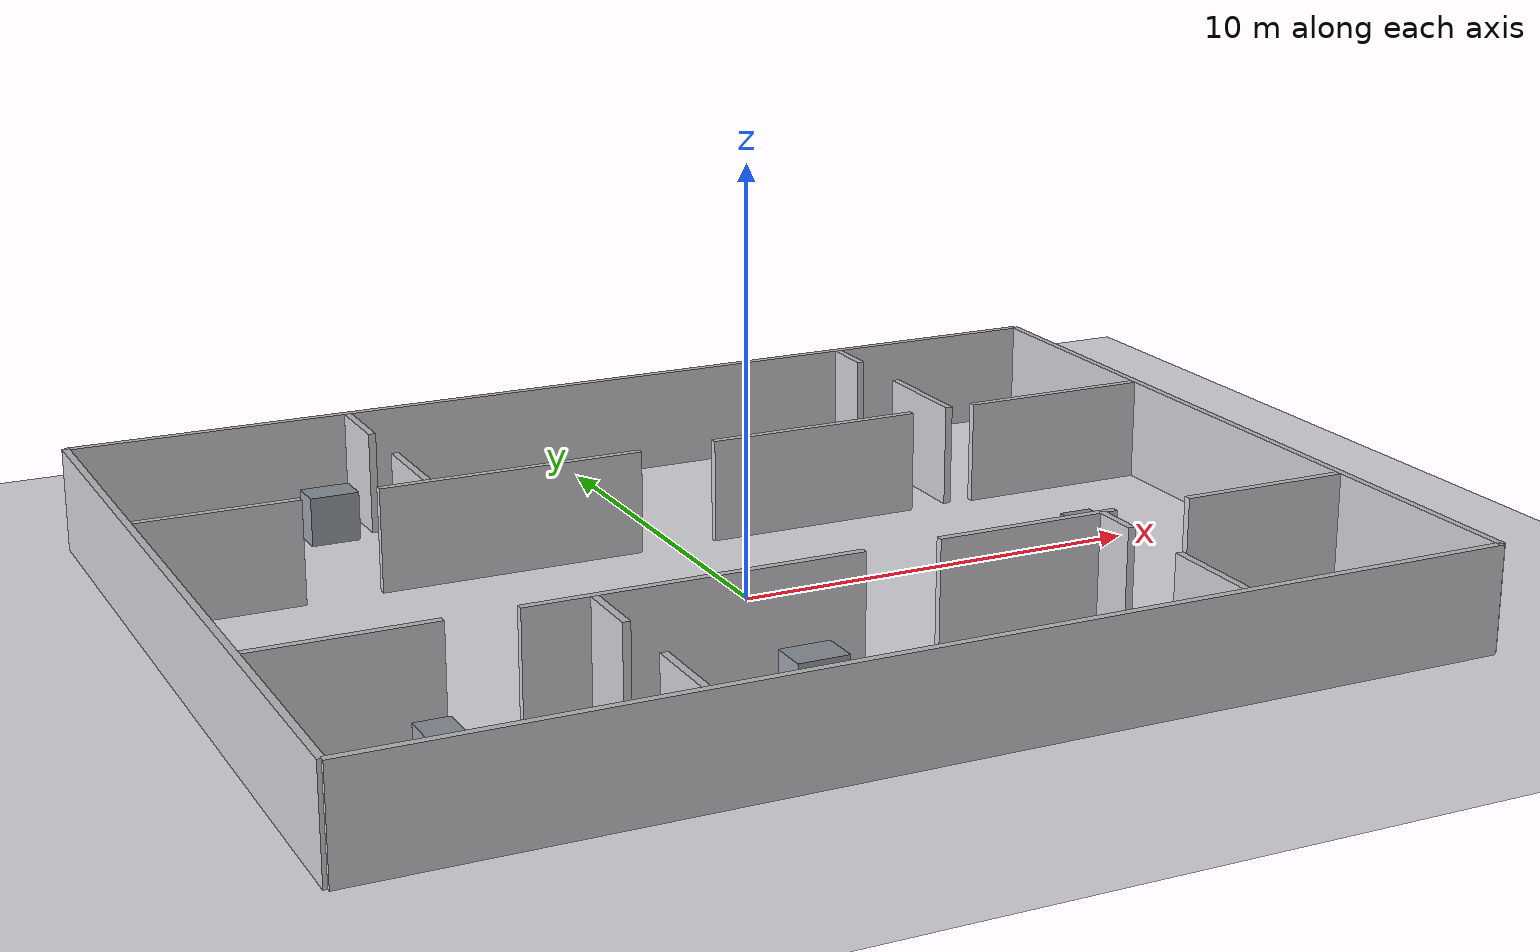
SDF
<?xml version="1.0"?>
<sdf version="1.9"><world name="new_room_world">
<plugin filename="gz-sim-physics-system" name="gz::sim::systems::Physics"/><plugin filename="gz-sim-user-commands-system" name="gz::sim::systems::UserCommands"/><plugin filename="gz-sim-scene-broadcaster-system" name="gz::sim::systems::SceneBroadcaster"/><plugin filename="gz-sim-sensors-system" name="gz::sim::systems::Sensors"><render_engine>ogre2</render_engine></plugin><plugin filename="gz-sim-imu-system" name="gz::sim::systems::Imu"/>
<physics name="new_room_realtime" type="ignored"><max_step_size>0.001</max_step_size><real_time_factor>1</real_time_factor></physics><gravity>0 0 -9.8</gravity><scene><ambient>0.85 0.85 0.87 1</ambient><background>0.68 0.68 0.71 1</background><shadows>false</shadows></scene><light name="sun" type="directional"><cast_shadows>false</cast_shadows><pose>0 0 10 0 0 0</pose><diffuse>0.95 0.95 0.95 1</diffuse><direction>-0.3 0.2 -1</direction></light>
<model name="new_room_ground"><static>true</static><link name="ground_link"><collision name="ground_collision"><geometry><plane><normal>0 0 1</normal><size>40 32</size></plane></geometry></collision><visual name="ground_visual"><geometry><plane><normal>0 0 1</normal><size>40 32</size></plane></geometry><material><ambient>0.92 0.92 0.94 1</ambient><diffuse>0.92 0.92 0.94 1</diffuse></material></visual></link></model>
<model name="mini_hospital_structure"><static>true</static><link name="structure">
<collision name="mx048_c000"><pose>0 10 1.25 0 0 0</pose><geometry><box><size>26 0.18 2.5</size></box></geometry></collision><visual name="mx048_v000"><pose>0 10 1.25 0 0 0</pose><geometry><box><size>26 0.18 2.5</size></box></geometry><material><ambient>0.78 0.78 0.80 1</ambient><diffuse>0.78 0.78 0.80 1</diffuse></material></visual>
<collision name="mx048_c001"><pose>0 -10 1.25 0 0 0</pose><geometry><box><size>26 0.18 2.5</size></box></geometry></collision><visual name="mx048_v001"><pose>0 -10 1.25 0 0 0</pose><geometry><box><size>26 0.18 2.5</size></box></geometry><material><ambient>0.78 0.78 0.80 1</ambient><diffuse>0.78 0.78 0.80 1</diffuse></material></visual>
<collision name="mx048_c002"><pose>-13 0 1.25 0 0 0</pose><geometry><box><size>0.18 20 2.5</size></box></geometry></collision><visual name="mx048_v002"><pose>-13 0 1.25 0 0 0</pose><geometry><box><size>0.18 20 2.5</size></box></geometry><material><ambient>0.78 0.78 0.80 1</ambient><diffuse>0.78 0.78 0.80 1</diffuse></material></visual>
<collision name="mx048_c003"><pose>13 0 1.25 0 0 0</pose><geometry><box><size>0.18 20 2.5</size></box></geometry></collision><visual name="mx048_v003"><pose>13 0 1.25 0 0 0</pose><geometry><box><size>0.18 20 2.5</size></box></geometry><material><ambient>0.78 0.78 0.80 1</ambient><diffuse>0.78 0.78 0.80 1</diffuse></material></visual>
<collision name="mx048_c004"><pose>-11.005 4 1.25 0 0 0</pose><geometry><box><size>3.81 0.18 2.5</size></box></geometry></collision><visual name="mx048_v004"><pose>-11.005 4 1.25 0 0 0</pose><geometry><box><size>3.81 0.18 2.5</size></box></geometry><material><ambient>0.78 0.78 0.80 1</ambient><diffuse>0.78 0.78 0.80 1</diffuse></material></visual>
<collision name="mx048_c005"><pose>-4.075 4 1.25 0 0 0</pose><geometry><box><size>6.45 0.18 2.5</size></box></geometry></collision><visual name="mx048_v005"><pose>-4.075 4 1.25 0 0 0</pose><geometry><box><size>6.45 0.18 2.5</size></box></geometry><material><ambient>0.78 0.78 0.80 1</ambient><diffuse>0.78 0.78 0.80 1</diffuse></material></visual>
<collision name="mx048_c006"><pose>3.75 4 1.25 0 0 0</pose><geometry><box><size>5.4 0.18 2.5</size></box></geometry></collision><visual name="mx048_v006"><pose>3.75 4 1.25 0 0 0</pose><geometry><box><size>5.4 0.18 2.5</size></box></geometry><material><ambient>0.78 0.78 0.80 1</ambient><diffuse>0.78 0.78 0.80 1</diffuse></material></visual>
<collision name="mx048_c007"><pose>10.53 4 1.25 0 0 0</pose><geometry><box><size>4.76 0.18 2.5</size></box></geometry></collision><visual name="mx048_v007"><pose>10.53 4 1.25 0 0 0</pose><geometry><box><size>4.76 0.18 2.5</size></box></geometry><material><ambient>0.78 0.78 0.80 1</ambient><diffuse>0.78 0.78 0.80 1</diffuse></material></visual>
<collision name="mx048_c008"><pose>-10.855 -4.5 1.25 0 0 0</pose><geometry><box><size>4.11 0.18 2.5</size></box></geometry></collision><visual name="mx048_v008"><pose>-10.855 -4.5 1.25 0 0 0</pose><geometry><box><size>4.11 0.18 2.5</size></box></geometry><material><ambient>0.78 0.78 0.80 1</ambient><diffuse>0.78 0.78 0.80 1</diffuse></material></visual>
<collision name="mx048_c009"><pose>-3.3 -4.5 1.25 0 0 0</pose><geometry><box><size>7.8 0.18 2.5</size></box></geometry></collision><visual name="mx048_v009"><pose>-3.3 -4.5 1.25 0 0 0</pose><geometry><box><size>7.8 0.18 2.5</size></box></geometry><material><ambient>0.78 0.78 0.80 1</ambient><diffuse>0.78 0.78 0.80 1</diffuse></material></visual>
<collision name="mx048_c010"><pose>4.625 -4.5 1.25 0 0 0</pose><geometry><box><size>4.45 0.18 2.5</size></box></geometry></collision><visual name="mx048_v010"><pose>4.625 -4.5 1.25 0 0 0</pose><geometry><box><size>4.45 0.18 2.5</size></box></geometry><material><ambient>0.78 0.78 0.80 1</ambient><diffuse>0.78 0.78 0.80 1</diffuse></material></visual>
<collision name="mx048_c011"><pose>10.83 -4.5 1.25 0 0 0</pose><geometry><box><size>4.16 0.18 2.5</size></box></geometry></collision><visual name="mx048_v011"><pose>10.83 -4.5 1.25 0 0 0</pose><geometry><box><size>4.16 0.18 2.5</size></box></geometry><material><ambient>0.78 0.78 0.80 1</ambient><diffuse>0.78 0.78 0.80 1</diffuse></material></visual>
<collision name="mx048_c012"><pose>-6.1 5.175 1.25 0 0 0</pose><geometry><box><size>0.18 2.35 2.5</size></box></geometry></collision><visual name="mx048_v012"><pose>-6.1 5.175 1.25 0 0 0</pose><geometry><box><size>0.18 2.35 2.5</size></box></geometry><material><ambient>0.78 0.78 0.80 1</ambient><diffuse>0.78 0.78 0.80 1</diffuse></material></visual>
<collision name="mx048_c013"><pose>-6.1 8.98 1.25 0 0 0</pose><geometry><box><size>0.18 1.86 2.5</size></box></geometry></collision><visual name="mx048_v013"><pose>-6.1 8.98 1.25 0 0 0</pose><geometry><box><size>0.18 1.86 2.5</size></box></geometry><material><ambient>0.78 0.78 0.80 1</ambient><diffuse>0.78 0.78 0.80 1</diffuse></material></visual>
<collision name="mx048_c014"><pose>7.5 5.375 1.25 0 0 0</pose><geometry><box><size>0.18 2.75 2.5</size></box></geometry></collision><visual name="mx048_v014"><pose>7.5 5.375 1.25 0 0 0</pose><geometry><box><size>0.18 2.75 2.5</size></box></geometry><material><ambient>0.78 0.78 0.80 1</ambient><diffuse>0.78 0.78 0.80 1</diffuse></material></visual>
<collision name="mx048_c015"><pose>7.5 9.28 1.25 0 0 0</pose><geometry><box><size>0.18 1.26 2.5</size></box></geometry></collision><visual name="mx048_v015"><pose>7.5 9.28 1.25 0 0 0</pose><geometry><box><size>0.18 1.26 2.5</size></box></geometry><material><ambient>0.78 0.78 0.80 1</ambient><diffuse>0.78 0.78 0.80 1</diffuse></material></visual>
<collision name="mx048_c016"><pose>-5.6 -8.955 1.25 0 0 0</pose><geometry><box><size>0.18 1.91 2.5</size></box></geometry></collision><visual name="mx048_v016"><pose>-5.6 -8.955 1.25 0 0 0</pose><geometry><box><size>0.18 1.91 2.5</size></box></geometry><material><ambient>0.78 0.78 0.80 1</ambient><diffuse>0.78 0.78 0.80 1</diffuse></material></visual>
<collision name="mx048_c017"><pose>-5.6 -5.35 1.25 0 0 0</pose><geometry><box><size>0.18 1.7 2.5</size></box></geometry></collision><visual name="mx048_v017"><pose>-5.6 -5.35 1.25 0 0 0</pose><geometry><box><size>0.18 1.7 2.5</size></box></geometry><material><ambient>0.78 0.78 0.80 1</ambient><diffuse>0.78 0.78 0.80 1</diffuse></material></visual>
<collision name="mx048_c018"><pose>6.5 -8.705 1.25 0 0 0</pose><geometry><box><size>0.18 2.41 2.5</size></box></geometry></collision><visual name="mx048_v018"><pose>6.5 -8.705 1.25 0 0 0</pose><geometry><box><size>0.18 2.41 2.5</size></box></geometry><material><ambient>0.78 0.78 0.80 1</ambient><diffuse>0.78 0.78 0.80 1</diffuse></material></visual>
<collision name="mx048_c019"><pose>6.5 -5.1 1.25 0 0 0</pose><geometry><box><size>0.18 1.2 2.5</size></box></geometry></collision><visual name="mx048_v019"><pose>6.5 -5.1 1.25 0 0 0</pose><geometry><box><size>0.18 1.2 2.5</size></box></geometry><material><ambient>0.78 0.78 0.80 1</ambient><diffuse>0.78 0.78 0.80 1</diffuse></material></visual>
<collision name="mx048_c020"><pose>-7.2 8.1 0.6 0 0 0</pose><geometry><box><size>1.2 0.8 1.2</size></box></geometry></collision><visual name="mx048_v020"><pose>-7.2 8.1 0.6 0 0 0</pose><geometry><box><size>1.2 0.8 1.2</size></box></geometry><material><ambient>0.58 0.60 0.64 1</ambient><diffuse>0.58 0.60 0.64 1</diffuse></material></visual>
<collision name="mx048_c021"><pose>-3.2 5.8 0.6 0 0 0</pose><geometry><box><size>1.1 0.7 1.2</size></box></geometry></collision><visual name="mx048_v021"><pose>-3.2 5.8 0.6 0 0 0</pose><geometry><box><size>1.1 0.7 1.2</size></box></geometry><material><ambient>0.58 0.60 0.64 1</ambient><diffuse>0.58 0.60 0.64 1</diffuse></material></visual>
<collision name="mx048_c022"><pose>10.5 5.3 0.6 0 0 0</pose><geometry><box><size>1 0.9 1.2</size></box></geometry></collision><visual name="mx048_v022"><pose>10.5 5.3 0.6 0 0 0</pose><geometry><box><size>1 0.9 1.2</size></box></geometry><material><ambient>0.58 0.60 0.64 1</ambient><diffuse>0.58 0.60 0.64 1</diffuse></material></visual>
<collision name="mx048_c023"><pose>-9.7 -6.7 0.6 0 0 0</pose><geometry><box><size>0.8 0.9 1.2</size></box></geometry></collision><visual name="mx048_v023"><pose>-9.7 -6.7 0.6 0 0 0</pose><geometry><box><size>0.8 0.9 1.2</size></box></geometry><material><ambient>0.58 0.60 0.64 1</ambient><diffuse>0.58 0.60 0.64 1</diffuse></material></visual>
<collision name="mx048_c024"><pose>-1.5 -6.3 0.6 0 0 0</pose><geometry><box><size>1.2 0.9 1.2</size></box></geometry></collision><visual name="mx048_v024"><pose>-1.5 -6.3 0.6 0 0 0</pose><geometry><box><size>1.2 0.9 1.2</size></box></geometry><material><ambient>0.58 0.60 0.64 1</ambient><diffuse>0.58 0.60 0.64 1</diffuse></material></visual>
<collision name="mx048_c025"><pose>8.2 -6.3 0.6 0 0 0</pose><geometry><box><size>0.8 1.2 1.2</size></box></geometry></collision><visual name="mx048_v025"><pose>8.2 -6.3 0.6 0 0 0</pose><geometry><box><size>0.8 1.2 1.2</size></box></geometry><material><ambient>0.58 0.60 0.64 1</ambient><diffuse>0.58 0.60 0.64 1</diffuse></material></visual>
<collision name="mx048_c026"><pose>-5.1 -2.1 0.6 0 0 0</pose><geometry><box><size>0.8 0.9 1.2</size></box></geometry></collision><visual name="mx048_v026"><pose>-5.1 -2.1 0.6 0 0 0</pose><geometry><box><size>0.8 0.9 1.2</size></box></geometry><material><ambient>0.58 0.60 0.64 1</ambient><diffuse>0.58 0.60 0.64 1</diffuse></material></visual>
<collision name="mx048_c027"><pose>8.1 -1.3 0.6 0 0 0</pose><geometry><box><size>0.8 0.7 1.2</size></box></geometry></collision><visual name="mx048_v027"><pose>8.1 -1.3 0.6 0 0 0</pose><geometry><box><size>0.8 0.7 1.2</size></box></geometry><material><ambient>0.58 0.60 0.64 1</ambient><diffuse>0.58 0.60 0.64 1</diffuse></material></visual>
</link></model></world></sdf>
